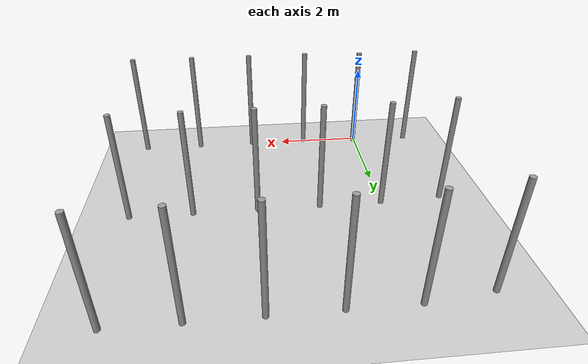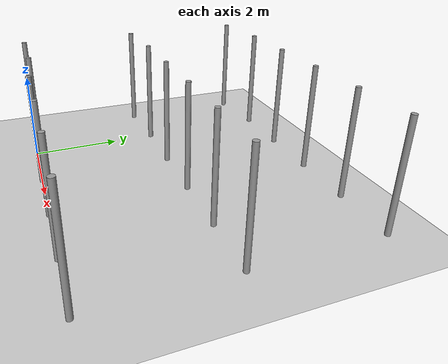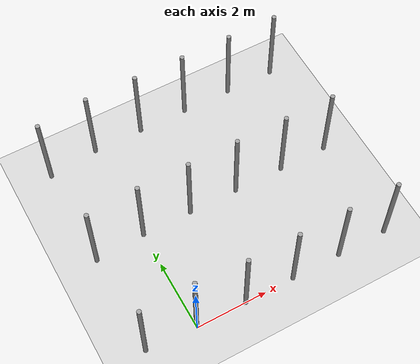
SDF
<sdf version="1.6">
 <world name="default">
  <light name="sun" type="directional">
   <pose>0 0 10 0 -0 0</pose>
   <diffuse>0.8 0.8 0.8 1</diffuse>
   <specular>0.1 0.1 0.1 1</specular>
   <attenuation>
    <range>1000</range>
    <constant>0.9</constant>
    <linear>0.01</linear>
    <quadratic>0.001</quadratic>
   </attenuation>
   <direction>-0.5 0.5 -1</direction>
  </light>
  <model name="ground_plane">
   <static>1</static>
   <link name="link">
    <collision name="collision">
     <geometry><plane><normal>0 0 1</normal><size>100 100</size></plane></geometry>
     <surface><friction><ode><mu>100</mu><mu2>50</mu2></ode></friction></surface>
    </collision>
    <visual name="visual">
     <cast_shadows>0</cast_shadows>
     <geometry><plane><normal>0 0 1</normal><size>100 100</size></plane></geometry>
     <material>
      <script><uri>file://media/materials/scripts/gazebo.material</uri><name>Gazebo/Grey</name></script>
     </material>
    </visual>
   </link>
  </model>
  <gravity>0 0 -9.8</gravity>
  <magnetic_field>6e-06 2.3e-05 -4.2e-05</magnetic_field>
  <atmosphere type="adiabatic"/>
  <physics name="default_physics" default="0" type="ode">
   <max_step_size>0.001</max_step_size>
   <real_time_factor>1</real_time_factor>
   <real_time_update_rate>1000</real_time_update_rate>
  </physics>
  <scene><ambient>0.4 0.4 0.4 1</ambient><background>0.7 0.7 0.7 1</background><shadows>1</shadows></scene>
  <spherical_coordinates>
   <surface_model>EARTH_WGS84</surface_model>
   <latitude_deg>0</latitude_deg>
   <longitude_deg>0</longitude_deg>
   <elevation>0</elevation>
   <heading_deg>0</heading_deg>
  </spherical_coordinates>
  <model name="pole_8">
   <link name="link_0">
    <inertial>
     <mass>0.0364582</mass>
     <inertia>
      <ixx>0.00312124</ixx>
      <ixy>0</ixy>
      <ixz>0</ixz>
      <iyy>0.00312124</iyy>
      <iyz>0</iyz>
      <izz>0.00016615</izz>
     </inertia>
    </inertial>
    <visual name="visual">
     <geometry><cylinder><radius>0.06</radius><length>2.5</length></cylinder></geometry>
     <material>
      <lighting>1</lighting>
      <script><uri>file://media/materials/scripts/gazebo.material</uri><name>Gazebo/Grey</name></script>
      <ambient>0.3 0.3 0.3 1</ambient>
      <diffuse>0.7 0.7 0.7 1</diffuse>
      <specular>0.01 0.01 0.01 1</specular>
      <emissive>0 0 0 1</emissive>
      <shader type="vertex"><normal_map>__default__</normal_map></shader>
     </material>
    </visual>
    <collision name="collision">
     <geometry><cylinder><radius>0.06</radius><length>2.5</length></cylinder></geometry>
     <surface>
      <friction>
       <ode><mu>1</mu><mu2>1</mu2><fdir1>0 0 0</fdir1><slip1>0</slip1><slip2>0</slip2></ode>
       <torsional>
        <coefficient>1</coefficient>
        <patch_radius>0</patch_radius>
        <surface_radius>0</surface_radius>
        <use_patch_radius>1</use_patch_radius>
        <ode><slip>0</slip></ode>
       </torsional>
      </friction>
      <bounce><restitution_coefficient>0</restitution_coefficient><threshold>1e+06</threshold></bounce>
      <contact>
       <collide_without_contact>0</collide_without_contact>
       <collide_without_contact_bitmask>1</collide_without_contact_bitmask>
       <collide_bitmask>1</collide_bitmask>
       <ode>
        <soft_cfm>0</soft_cfm>
        <soft_erp>0.2</soft_erp>
        <kp>1e+13</kp>
        <kd>1</kd>
        <max_vel>0.01</max_vel>
        <min_depth>0</min_depth>
       </ode>
       <bullet>
        <split_impulse>1</split_impulse>
        <split_impulse_penetration_threshold>-0.01</split_impulse_penetration_threshold>
        <soft_cfm>0</soft_cfm>
        <soft_erp>0.2</soft_erp>
        <kp>1e+13</kp>
        <kd>1</kd>
       </bullet>
      </contact>
     </surface>
    </collision>
   </link>
   <static>0</static>
   <pose>1.40425 0.001666 1.25 -0 1e-06 -0.020338</pose>
  </model>
  <model name="pole_9">
   <link name="link_0">
    <inertial>
     <mass>0.0364582</mass>
     <inertia>
      <ixx>0.00312124</ixx>
      <ixy>0</ixy>
      <ixz>0</ixz>
      <iyy>0.00312124</iyy>
      <iyz>0</iyz>
      <izz>0.00016615</izz>
     </inertia>
    </inertial>
    <visual name="visual">
     <geometry><cylinder><radius>0.06</radius><length>2.5</length></cylinder></geometry>
     <material>
      <lighting>1</lighting>
      <script><uri>file://media/materials/scripts/gazebo.material</uri><name>Gazebo/Grey</name></script>
      <ambient>0.3 0.3 0.3 1</ambient>
      <diffuse>0.7 0.7 0.7 1</diffuse>
      <specular>0.01 0.01 0.01 1</specular>
      <emissive>0 0 0 1</emissive>
      <shader type="vertex"><normal_map>__default__</normal_map></shader>
     </material>
    </visual>
    <collision name="collision">
     <geometry><cylinder><radius>0.06</radius><length>2.5</length></cylinder></geometry>
     <surface>
      <friction>
       <ode><mu>1</mu><mu2>1</mu2><fdir1>0 0 0</fdir1><slip1>0</slip1><slip2>0</slip2></ode>
       <torsional>
        <coefficient>1</coefficient>
        <patch_radius>0</patch_radius>
        <surface_radius>0</surface_radius>
        <use_patch_radius>1</use_patch_radius>
        <ode><slip>0</slip></ode>
       </torsional>
      </friction>
      <bounce><restitution_coefficient>0</restitution_coefficient><threshold>1e+06</threshold></bounce>
      <contact>
       <collide_without_contact>0</collide_without_contact>
       <collide_without_contact_bitmask>1</collide_without_contact_bitmask>
       <collide_bitmask>1</collide_bitmask>
       <ode>
        <soft_cfm>0</soft_cfm>
        <soft_erp>0.2</soft_erp>
        <kp>1e+13</kp>
        <kd>1</kd>
        <max_vel>0.01</max_vel>
        <min_depth>0</min_depth>
       </ode>
       <bullet>
        <split_impulse>1</split_impulse>
        <split_impulse_penetration_threshold>-0.01</split_impulse_penetration_threshold>
        <soft_cfm>0</soft_cfm>
        <soft_erp>0.2</soft_erp>
        <kp>1e+13</kp>
        <kd>1</kd>
       </bullet>
      </contact>
     </surface>
    </collision>
   </link>
   <static>0</static>
   <pose>2.80807 0.001895 1.24999 0 1e-06 -0.040139</pose>
  </model>
  <model name="pole_10">
   <link name="link_0">
    <inertial>
     <mass>0.0364582</mass>
     <inertia>
      <ixx>0.00312124</ixx>
      <ixy>0</ixy>
      <ixz>0</ixz>
      <iyy>0.00312124</iyy>
      <iyz>0</iyz>
      <izz>0.00016615</izz>
     </inertia>
    </inertial>
    <visual name="visual">
     <geometry><cylinder><radius>0.06</radius><length>2.5</length></cylinder></geometry>
     <material>
      <lighting>1</lighting>
      <script><uri>file://media/materials/scripts/gazebo.material</uri><name>Gazebo/Grey</name></script>
      <ambient>0.3 0.3 0.3 1</ambient>
      <diffuse>0.7 0.7 0.7 1</diffuse>
      <specular>0.01 0.01 0.01 1</specular>
      <emissive>0 0 0 1</emissive>
      <shader type="vertex"><normal_map>__default__</normal_map></shader>
     </material>
    </visual>
    <collision name="collision">
     <geometry><cylinder><radius>0.06</radius><length>2.5</length></cylinder></geometry>
     <surface>
      <friction>
       <ode><mu>1</mu><mu2>1</mu2><fdir1>0 0 0</fdir1><slip1>0</slip1><slip2>0</slip2></ode>
       <torsional>
        <coefficient>1</coefficient>
        <patch_radius>0</patch_radius>
        <surface_radius>0</surface_radius>
        <use_patch_radius>1</use_patch_radius>
        <ode><slip>0</slip></ode>
       </torsional>
      </friction>
      <bounce><restitution_coefficient>0</restitution_coefficient><threshold>1e+06</threshold></bounce>
      <contact>
       <collide_without_contact>0</collide_without_contact>
       <collide_without_contact_bitmask>1</collide_without_contact_bitmask>
       <collide_bitmask>1</collide_bitmask>
       <ode>
        <soft_cfm>0</soft_cfm>
        <soft_erp>0.2</soft_erp>
        <kp>1e+13</kp>
        <kd>1</kd>
        <max_vel>0.01</max_vel>
        <min_depth>0</min_depth>
       </ode>
       <bullet>
        <split_impulse>1</split_impulse>
        <split_impulse_penetration_threshold>-0.01</split_impulse_penetration_threshold>
        <soft_cfm>0</soft_cfm>
        <soft_erp>0.2</soft_erp>
        <kp>1e+13</kp>
        <kd>1</kd>
       </bullet>
      </contact>
     </surface>
    </collision>
   </link>
   <static>0</static>
   <pose>4.20397 0.001829 1.25 -1e-06 -1e-06 -0.022796</pose>
  </model>
  <model name="pole_11">
   <link name="link_0">
    <inertial>
     <mass>0.0364582</mass>
     <inertia>
      <ixx>0.00312124</ixx>
      <ixy>0</ixy>
      <ixz>0</ixz>
      <iyy>0.00312124</iyy>
      <iyz>0</iyz>
      <izz>0.00016615</izz>
     </inertia>
    </inertial>
    <visual name="visual">
     <geometry><cylinder><radius>0.06</radius><length>2.5</length></cylinder></geometry>
     <material>
      <lighting>1</lighting>
      <script><uri>file://media/materials/scripts/gazebo.material</uri><name>Gazebo/Grey</name></script>
      <ambient>0.3 0.3 0.3 1</ambient>
      <diffuse>0.7 0.7 0.7 1</diffuse>
      <specular>0.01 0.01 0.01 1</specular>
      <emissive>0 0 0 1</emissive>
      <shader type="vertex"><normal_map>__default__</normal_map></shader>
     </material>
    </visual>
    <collision name="collision">
     <geometry><cylinder><radius>0.06</radius><length>2.5</length></cylinder></geometry>
     <surface>
      <friction>
       <ode><mu>1</mu><mu2>1</mu2><fdir1>0 0 0</fdir1><slip1>0</slip1><slip2>0</slip2></ode>
       <torsional>
        <coefficient>1</coefficient>
        <patch_radius>0</patch_radius>
        <surface_radius>0</surface_radius>
        <use_patch_radius>1</use_patch_radius>
        <ode><slip>0</slip></ode>
       </torsional>
      </friction>
      <bounce><restitution_coefficient>0</restitution_coefficient><threshold>1e+06</threshold></bounce>
      <contact>
       <collide_without_contact>0</collide_without_contact>
       <collide_without_contact_bitmask>1</collide_without_contact_bitmask>
       <collide_bitmask>1</collide_bitmask>
       <ode>
        <soft_cfm>0</soft_cfm>
        <soft_erp>0.2</soft_erp>
        <kp>1e+13</kp>
        <kd>1</kd>
        <max_vel>0.01</max_vel>
        <min_depth>0</min_depth>
       </ode>
       <bullet>
        <split_impulse>1</split_impulse>
        <split_impulse_penetration_threshold>-0.01</split_impulse_penetration_threshold>
        <soft_cfm>0</soft_cfm>
        <soft_erp>0.2</soft_erp>
        <kp>1e+13</kp>
        <kd>1</kd>
       </bullet>
      </contact>
     </surface>
    </collision>
   </link>
   <static>0</static>
   <pose>5.61625 0.001647 1.24999 -1e-06 -0 -0.022703</pose>
  </model>
  <model name="pole_11_clone">
   <link name="link_0">
    <inertial>
     <mass>0.0364582</mass>
     <inertia>
      <ixx>0.00312124</ixx>
      <ixy>0</ixy>
      <ixz>0</ixz>
      <iyy>0.00312124</iyy>
      <iyz>0</iyz>
      <izz>0.00016615</izz>
     </inertia>
    </inertial>
    <visual name="visual">
     <geometry><cylinder><radius>0.06</radius><length>2.5</length></cylinder></geometry>
     <material>
      <lighting>1</lighting>
      <script><uri>file://media/materials/scripts/gazebo.material</uri><name>Gazebo/Grey</name></script>
      <ambient>0.3 0.3 0.3 1</ambient>
      <diffuse>0.7 0.7 0.7 1</diffuse>
      <specular>0.01 0.01 0.01 1</specular>
      <emissive>0 0 0 1</emissive>
      <shader type="vertex"><normal_map>__default__</normal_map></shader>
     </material>
    </visual>
    <collision name="collision">
     <geometry><cylinder><radius>0.06</radius><length>2.5</length></cylinder></geometry>
     <surface>
      <friction>
       <ode><mu>1</mu><mu2>1</mu2><fdir1>0 0 0</fdir1><slip1>0</slip1><slip2>0</slip2></ode>
       <torsional>
        <coefficient>1</coefficient>
        <patch_radius>0</patch_radius>
        <surface_radius>0</surface_radius>
        <use_patch_radius>1</use_patch_radius>
        <ode><slip>0</slip></ode>
       </torsional>
      </friction>
      <bounce><restitution_coefficient>0</restitution_coefficient><threshold>1e+06</threshold></bounce>
      <contact>
       <collide_without_contact>0</collide_without_contact>
       <collide_without_contact_bitmask>1</collide_without_contact_bitmask>
       <collide_bitmask>1</collide_bitmask>
       <ode>
        <soft_cfm>0</soft_cfm>
        <soft_erp>0.2</soft_erp>
        <kp>1e+13</kp>
        <kd>1</kd>
        <max_vel>0.01</max_vel>
        <min_depth>0</min_depth>
       </ode>
       <bullet>
        <split_impulse>1</split_impulse>
        <split_impulse_penetration_threshold>-0.01</split_impulse_penetration_threshold>
        <soft_cfm>0</soft_cfm>
        <soft_erp>0.2</soft_erp>
        <kp>1e+13</kp>
        <kd>1</kd>
       </bullet>
      </contact>
     </surface>
    </collision>
   </link>
   <static>0</static>
   <pose>0.000733 2.98388 1.24999 -1e-06 2e-06 -0.029597</pose>
  </model>
  <model name="pole">
   <link name="link_0">
    <inertial>
     <mass>0.0364582</mass>
     <inertia>
      <ixx>0.00312124</ixx>
      <ixy>0</ixy>
      <ixz>0</ixz>
      <iyy>0.00312124</iyy>
      <iyz>0</iyz>
      <izz>0.00016615</izz>
     </inertia>
    </inertial>
    <visual name="visual">
     <geometry><cylinder><radius>0.06</radius><length>2.5</length></cylinder></geometry>
     <material>
      <lighting>1</lighting>
      <script><uri>file://media/materials/scripts/gazebo.material</uri><name>Gazebo/Grey</name></script>
      <ambient>0.3 0.3 0.3 1</ambient>
      <diffuse>0.7 0.7 0.7 1</diffuse>
      <specular>0.01 0.01 0.01 1</specular>
      <emissive>0 0 0 1</emissive>
      <shader type="vertex"><normal_map>__default__</normal_map></shader>
     </material>
    </visual>
    <collision name="collision">
     <geometry><cylinder><radius>0.06</radius><length>2.5</length></cylinder></geometry>
     <surface>
      <friction>
       <ode><mu>1</mu><mu2>1</mu2><fdir1>0 0 0</fdir1><slip1>0</slip1><slip2>0</slip2></ode>
       <torsional>
        <coefficient>1</coefficient>
        <patch_radius>0</patch_radius>
        <surface_radius>0</surface_radius>
        <use_patch_radius>1</use_patch_radius>
        <ode><slip>0</slip></ode>
       </torsional>
      </friction>
      <bounce><restitution_coefficient>0</restitution_coefficient><threshold>1e+06</threshold></bounce>
      <contact>
       <collide_without_contact>0</collide_without_contact>
       <collide_without_contact_bitmask>1</collide_without_contact_bitmask>
       <collide_bitmask>1</collide_bitmask>
       <ode>
        <soft_cfm>0</soft_cfm>
        <soft_erp>0.2</soft_erp>
        <kp>1e+13</kp>
        <kd>1</kd>
        <max_vel>0.01</max_vel>
        <min_depth>0</min_depth>
       </ode>
       <bullet>
        <split_impulse>1</split_impulse>
        <split_impulse_penetration_threshold>-0.01</split_impulse_penetration_threshold>
        <soft_cfm>0</soft_cfm>
        <soft_erp>0.2</soft_erp>
        <kp>1e+13</kp>
        <kd>1</kd>
       </bullet>
      </contact>
     </surface>
    </collision>
   </link>
   <static>0</static>
   <pose>0.006715 5.9613 1.24999 0 -1e-06 -0.016992</pose>
  </model>
  <model name="pole_2">
   <link name="link_0">
    <inertial>
     <mass>0.0364582</mass>
     <inertia>
      <ixx>0.00312124</ixx>
      <ixy>0</ixy>
      <ixz>0</ixz>
      <iyy>0.00312124</iyy>
      <iyz>0</iyz>
      <izz>0.00016615</izz>
     </inertia>
    </inertial>
    <visual name="visual">
     <geometry><cylinder><radius>0.06</radius><length>2.5</length></cylinder></geometry>
     <material>
      <lighting>1</lighting>
      <script><uri>file://media/materials/scripts/gazebo.material</uri><name>Gazebo/Grey</name></script>
      <ambient>0.3 0.3 0.3 1</ambient>
      <diffuse>0.7 0.7 0.7 1</diffuse>
      <specular>0.01 0.01 0.01 1</specular>
      <emissive>0 0 0 1</emissive>
      <shader type="vertex"><normal_map>__default__</normal_map></shader>
     </material>
    </visual>
    <collision name="collision">
     <geometry><cylinder><radius>0.06</radius><length>2.5</length></cylinder></geometry>
     <surface>
      <friction>
       <ode><mu>1</mu><mu2>1</mu2><fdir1>0 0 0</fdir1><slip1>0</slip1><slip2>0</slip2></ode>
       <torsional>
        <coefficient>1</coefficient>
        <patch_radius>0</patch_radius>
        <surface_radius>0</surface_radius>
        <use_patch_radius>1</use_patch_radius>
        <ode><slip>0</slip></ode>
       </torsional>
      </friction>
      <bounce><restitution_coefficient>0</restitution_coefficient><threshold>1e+06</threshold></bounce>
      <contact>
       <collide_without_contact>0</collide_without_contact>
       <collide_without_contact_bitmask>1</collide_without_contact_bitmask>
       <collide_bitmask>1</collide_bitmask>
       <ode>
        <soft_cfm>0</soft_cfm>
        <soft_erp>0.2</soft_erp>
        <kp>1e+13</kp>
        <kd>1</kd>
        <max_vel>0.01</max_vel>
        <min_depth>0</min_depth>
       </ode>
       <bullet>
        <split_impulse>1</split_impulse>
        <split_impulse_penetration_threshold>-0.01</split_impulse_penetration_threshold>
        <soft_cfm>0</soft_cfm>
        <soft_erp>0.2</soft_erp>
        <kp>1e+13</kp>
        <kd>1</kd>
       </bullet>
      </contact>
     </surface>
    </collision>
   </link>
   <static>0</static>
   <pose>0.03423 0.094504 1.24999 -0 -1e-06 0.044543</pose>
  </model>
  <model name="pole_3">
   <link name="link_0">
    <inertial>
     <mass>0.0364582</mass>
     <inertia>
      <ixx>0.00312124</ixx>
      <ixy>0</ixy>
      <ixz>0</ixz>
      <iyy>0.00312124</iyy>
      <iyz>0</iyz>
      <izz>0.00016615</izz>
     </inertia>
    </inertial>
    <visual name="visual">
     <geometry><cylinder><radius>0.06</radius><length>2.5</length></cylinder></geometry>
     <material>
      <lighting>1</lighting>
      <script><uri>file://media/materials/scripts/gazebo.material</uri><name>Gazebo/Grey</name></script>
      <ambient>0.3 0.3 0.3 1</ambient>
      <diffuse>0.7 0.7 0.7 1</diffuse>
      <specular>0.01 0.01 0.01 1</specular>
      <emissive>0 0 0 1</emissive>
      <shader type="vertex"><normal_map>__default__</normal_map></shader>
     </material>
    </visual>
    <collision name="collision">
     <geometry><cylinder><radius>0.06</radius><length>2.5</length></cylinder></geometry>
     <surface>
      <friction>
       <ode><mu>1</mu><mu2>1</mu2><fdir1>0 0 0</fdir1><slip1>0</slip1><slip2>0</slip2></ode>
       <torsional>
        <coefficient>1</coefficient>
        <patch_radius>0</patch_radius>
        <surface_radius>0</surface_radius>
        <use_patch_radius>1</use_patch_radius>
        <ode><slip>0</slip></ode>
       </torsional>
      </friction>
      <bounce><restitution_coefficient>0</restitution_coefficient><threshold>1e+06</threshold></bounce>
      <contact>
       <collide_without_contact>0</collide_without_contact>
       <collide_without_contact_bitmask>1</collide_without_contact_bitmask>
       <collide_bitmask>1</collide_bitmask>
       <ode>
        <soft_cfm>0</soft_cfm>
        <soft_erp>0.2</soft_erp>
        <kp>1e+13</kp>
        <kd>1</kd>
        <max_vel>0.01</max_vel>
        <min_depth>0</min_depth>
       </ode>
       <bullet>
        <split_impulse>1</split_impulse>
        <split_impulse_penetration_threshold>-0.01</split_impulse_penetration_threshold>
        <soft_cfm>0</soft_cfm>
        <soft_erp>0.2</soft_erp>
        <kp>1e+13</kp>
        <kd>1</kd>
       </bullet>
      </contact>
     </surface>
    </collision>
   </link>
   <static>0</static>
   <pose>1.40476 2.98139 1.25 -1e-06 1e-06 -0.017683</pose>
  </model>
  <model name="pole_5">
   <link name="link_0">
    <inertial>
     <mass>0.0364582</mass>
     <inertia>
      <ixx>0.00312124</ixx>
      <ixy>0</ixy>
      <ixz>0</ixz>
      <iyy>0.00312124</iyy>
      <iyz>0</iyz>
      <izz>0.00016615</izz>
     </inertia>
    </inertial>
    <visual name="visual">
     <geometry><cylinder><radius>0.06</radius><length>2.5</length></cylinder></geometry>
     <material>
      <lighting>1</lighting>
      <script><uri>file://media/materials/scripts/gazebo.material</uri><name>Gazebo/Grey</name></script>
      <ambient>0.3 0.3 0.3 1</ambient>
      <diffuse>0.7 0.7 0.7 1</diffuse>
      <specular>0.01 0.01 0.01 1</specular>
      <emissive>0 0 0 1</emissive>
      <shader type="vertex"><normal_map>__default__</normal_map></shader>
     </material>
    </visual>
    <collision name="collision">
     <geometry><cylinder><radius>0.06</radius><length>2.5</length></cylinder></geometry>
     <surface>
      <friction>
       <ode><mu>1</mu><mu2>1</mu2><fdir1>0 0 0</fdir1><slip1>0</slip1><slip2>0</slip2></ode>
       <torsional>
        <coefficient>1</coefficient>
        <patch_radius>0</patch_radius>
        <surface_radius>0</surface_radius>
        <use_patch_radius>1</use_patch_radius>
        <ode><slip>0</slip></ode>
       </torsional>
      </friction>
      <bounce><restitution_coefficient>0</restitution_coefficient><threshold>1e+06</threshold></bounce>
      <contact>
       <collide_without_contact>0</collide_without_contact>
       <collide_without_contact_bitmask>1</collide_without_contact_bitmask>
       <collide_bitmask>1</collide_bitmask>
       <ode>
        <soft_cfm>0</soft_cfm>
        <soft_erp>0.2</soft_erp>
        <kp>1e+13</kp>
        <kd>1</kd>
        <max_vel>0.01</max_vel>
        <min_depth>0</min_depth>
       </ode>
       <bullet>
        <split_impulse>1</split_impulse>
        <split_impulse_penetration_threshold>-0.01</split_impulse_penetration_threshold>
        <soft_cfm>0</soft_cfm>
        <soft_erp>0.2</soft_erp>
        <kp>1e+13</kp>
        <kd>1</kd>
       </bullet>
      </contact>
     </surface>
    </collision>
   </link>
   <static>0</static>
   <pose>2.79586 2.9814 1.24999 -1e-06 -0 -0.01763</pose>
  </model>
  <model name="pole_6">
   <link name="link_0">
    <inertial>
     <mass>0.0364582</mass>
     <inertia>
      <ixx>0.00312124</ixx>
      <ixy>0</ixy>
      <ixz>0</ixz>
      <iyy>0.00312124</iyy>
      <iyz>0</iyz>
      <izz>0.00016615</izz>
     </inertia>
    </inertial>
    <visual name="visual">
     <geometry><cylinder><radius>0.06</radius><length>2.5</length></cylinder></geometry>
     <material>
      <lighting>1</lighting>
      <script><uri>file://media/materials/scripts/gazebo.material</uri><name>Gazebo/Grey</name></script>
      <ambient>0.3 0.3 0.3 1</ambient>
      <diffuse>0.7 0.7 0.7 1</diffuse>
      <specular>0.01 0.01 0.01 1</specular>
      <emissive>0 0 0 1</emissive>
      <shader type="vertex"><normal_map>__default__</normal_map></shader>
     </material>
    </visual>
    <collision name="collision">
     <geometry><cylinder><radius>0.06</radius><length>2.5</length></cylinder></geometry>
     <surface>
      <friction>
       <ode><mu>1</mu><mu2>1</mu2><fdir1>0 0 0</fdir1><slip1>0</slip1><slip2>0</slip2></ode>
       <torsional>
        <coefficient>1</coefficient>
        <patch_radius>0</patch_radius>
        <surface_radius>0</surface_radius>
        <use_patch_radius>1</use_patch_radius>
        <ode><slip>0</slip></ode>
       </torsional>
      </friction>
      <bounce><restitution_coefficient>0</restitution_coefficient><threshold>1e+06</threshold></bounce>
      <contact>
       <collide_without_contact>0</collide_without_contact>
       <collide_without_contact_bitmask>1</collide_without_contact_bitmask>
       <collide_bitmask>1</collide_bitmask>
       <ode>
        <soft_cfm>0</soft_cfm>
        <soft_erp>0.2</soft_erp>
        <kp>1e+13</kp>
        <kd>1</kd>
        <max_vel>0.01</max_vel>
        <min_depth>0</min_depth>
       </ode>
       <bullet>
        <split_impulse>1</split_impulse>
        <split_impulse_penetration_threshold>-0.01</split_impulse_penetration_threshold>
        <soft_cfm>0</soft_cfm>
        <soft_erp>0.2</soft_erp>
        <kp>1e+13</kp>
        <kd>1</kd>
       </bullet>
      </contact>
     </surface>
    </collision>
   </link>
   <static>0</static>
   <pose>4.22243 2.98125 1.24999 0 -1e-06 -0.015515</pose>
  </model>
  <model name="pole_7">
   <link name="link_0">
    <inertial>
     <mass>0.0364582</mass>
     <inertia>
      <ixx>0.00312124</ixx>
      <ixy>0</ixy>
      <ixz>0</ixz>
      <iyy>0.00312124</iyy>
      <iyz>0</iyz>
      <izz>0.00016615</izz>
     </inertia>
    </inertial>
    <visual name="visual">
     <geometry><cylinder><radius>0.06</radius><length>2.5</length></cylinder></geometry>
     <material>
      <lighting>1</lighting>
      <script><uri>file://media/materials/scripts/gazebo.material</uri><name>Gazebo/Grey</name></script>
      <ambient>0.3 0.3 0.3 1</ambient>
      <diffuse>0.7 0.7 0.7 1</diffuse>
      <specular>0.01 0.01 0.01 1</specular>
      <emissive>0 0 0 1</emissive>
      <shader type="vertex"><normal_map>__default__</normal_map></shader>
     </material>
    </visual>
    <collision name="collision">
     <geometry><cylinder><radius>0.06</radius><length>2.5</length></cylinder></geometry>
     <surface>
      <friction>
       <ode><mu>1</mu><mu2>1</mu2><fdir1>0 0 0</fdir1><slip1>0</slip1><slip2>0</slip2></ode>
       <torsional>
        <coefficient>1</coefficient>
        <patch_radius>0</patch_radius>
        <surface_radius>0</surface_radius>
        <use_patch_radius>1</use_patch_radius>
        <ode><slip>0</slip></ode>
       </torsional>
      </friction>
      <bounce><restitution_coefficient>0</restitution_coefficient><threshold>1e+06</threshold></bounce>
      <contact>
       <collide_without_contact>0</collide_without_contact>
       <collide_without_contact_bitmask>1</collide_without_contact_bitmask>
       <collide_bitmask>1</collide_bitmask>
       <ode>
        <soft_cfm>0</soft_cfm>
        <soft_erp>0.2</soft_erp>
        <kp>1e+13</kp>
        <kd>1</kd>
        <max_vel>0.01</max_vel>
        <min_depth>0</min_depth>
       </ode>
       <bullet>
        <split_impulse>1</split_impulse>
        <split_impulse_penetration_threshold>-0.01</split_impulse_penetration_threshold>
        <soft_cfm>0</soft_cfm>
        <soft_erp>0.2</soft_erp>
        <kp>1e+13</kp>
        <kd>1</kd>
       </bullet>
      </contact>
     </surface>
    </collision>
   </link>
   <static>0</static>
   <pose>5.60736 2.9814 1.25 0 3e-06 -0.015054</pose>
  </model>
  <model name="pole_12">
   <link name="link_0">
    <inertial>
     <mass>0.0364582</mass>
     <inertia>
      <ixx>0.00312124</ixx>
      <ixy>0</ixy>
      <ixz>0</ixz>
      <iyy>0.00312124</iyy>
      <iyz>0</iyz>
      <izz>0.00016615</izz>
     </inertia>
    </inertial>
    <visual name="visual">
     <geometry><cylinder><radius>0.06</radius><length>2.5</length></cylinder></geometry>
     <material>
      <lighting>1</lighting>
      <script><uri>file://media/materials/scripts/gazebo.material</uri><name>Gazebo/Grey</name></script>
      <ambient>0.3 0.3 0.3 1</ambient>
      <diffuse>0.7 0.7 0.7 1</diffuse>
      <specular>0.01 0.01 0.01 1</specular>
      <emissive>0 0 0 1</emissive>
      <shader type="vertex"><normal_map>__default__</normal_map></shader>
     </material>
    </visual>
    <collision name="collision">
     <geometry><cylinder><radius>0.06</radius><length>2.5</length></cylinder></geometry>
     <surface>
      <friction>
       <ode><mu>1</mu><mu2>1</mu2><fdir1>0 0 0</fdir1><slip1>0</slip1><slip2>0</slip2></ode>
       <torsional>
        <coefficient>1</coefficient>
        <patch_radius>0</patch_radius>
        <surface_radius>0</surface_radius>
        <use_patch_radius>1</use_patch_radius>
        <ode><slip>0</slip></ode>
       </torsional>
      </friction>
      <bounce><restitution_coefficient>0</restitution_coefficient><threshold>1e+06</threshold></bounce>
      <contact>
       <collide_without_contact>0</collide_without_contact>
       <collide_without_contact_bitmask>1</collide_without_contact_bitmask>
       <collide_bitmask>1</collide_bitmask>
       <ode>
        <soft_cfm>0</soft_cfm>
        <soft_erp>0.2</soft_erp>
        <kp>1e+13</kp>
        <kd>1</kd>
        <max_vel>0.01</max_vel>
        <min_depth>0</min_depth>
       </ode>
       <bullet>
        <split_impulse>1</split_impulse>
        <split_impulse_penetration_threshold>-0.01</split_impulse_penetration_threshold>
        <soft_cfm>0</soft_cfm>
        <soft_erp>0.2</soft_erp>
        <kp>1e+13</kp>
        <kd>1</kd>
       </bullet>
      </contact>
     </surface>
    </collision>
   </link>
   <static>0</static>
   <pose>1.41364 5.96128 1.25 -1e-06 -1e-06 -0.013858</pose>
  </model>
  <model name="pole_13">
   <link name="link_0">
    <inertial>
     <mass>0.0364582</mass>
     <inertia>
      <ixx>0.00312124</ixx>
      <ixy>0</ixy>
      <ixz>0</ixz>
      <iyy>0.00312124</iyy>
      <iyz>0</iyz>
      <izz>0.00016615</izz>
     </inertia>
    </inertial>
    <visual name="visual">
     <geometry><cylinder><radius>0.06</radius><length>2.5</length></cylinder></geometry>
     <material>
      <lighting>1</lighting>
      <script><uri>file://media/materials/scripts/gazebo.material</uri><name>Gazebo/Grey</name></script>
      <ambient>0.3 0.3 0.3 1</ambient>
      <diffuse>0.7 0.7 0.7 1</diffuse>
      <specular>0.01 0.01 0.01 1</specular>
      <emissive>0 0 0 1</emissive>
      <shader type="vertex"><normal_map>__default__</normal_map></shader>
     </material>
    </visual>
    <collision name="collision">
     <geometry><cylinder><radius>0.06</radius><length>2.5</length></cylinder></geometry>
     <surface>
      <friction>
       <ode><mu>1</mu><mu2>1</mu2><fdir1>0 0 0</fdir1><slip1>0</slip1><slip2>0</slip2></ode>
       <torsional>
        <coefficient>1</coefficient>
        <patch_radius>0</patch_radius>
        <surface_radius>0</surface_radius>
        <use_patch_radius>1</use_patch_radius>
        <ode><slip>0</slip></ode>
       </torsional>
      </friction>
      <bounce><restitution_coefficient>0</restitution_coefficient><threshold>1e+06</threshold></bounce>
      <contact>
       <collide_without_contact>0</collide_without_contact>
       <collide_without_contact_bitmask>1</collide_without_contact_bitmask>
       <collide_bitmask>1</collide_bitmask>
       <ode>
        <soft_cfm>0</soft_cfm>
        <soft_erp>0.2</soft_erp>
        <kp>1e+13</kp>
        <kd>1</kd>
        <max_vel>0.01</max_vel>
        <min_depth>0</min_depth>
       </ode>
       <bullet>
        <split_impulse>1</split_impulse>
        <split_impulse_penetration_threshold>-0.01</split_impulse_penetration_threshold>
        <soft_cfm>0</soft_cfm>
        <soft_erp>0.2</soft_erp>
        <kp>1e+13</kp>
        <kd>1</kd>
       </bullet>
      </contact>
     </surface>
    </collision>
   </link>
   <static>0</static>
   <pose>2.80805 5.96144 1.25 0 -1e-06 -0.014469</pose>
  </model>
  <model name="pole_14">
   <link name="link_0">
    <inertial>
     <mass>0.0364582</mass>
     <inertia>
      <ixx>0.00312124</ixx>
      <ixy>0</ixy>
      <ixz>0</ixz>
      <iyy>0.00312124</iyy>
      <iyz>0</iyz>
      <izz>0.00016615</izz>
     </inertia>
    </inertial>
    <visual name="visual">
     <geometry><cylinder><radius>0.06</radius><length>2.5</length></cylinder></geometry>
     <material>
      <lighting>1</lighting>
      <script><uri>file://media/materials/scripts/gazebo.material</uri><name>Gazebo/Grey</name></script>
      <ambient>0.3 0.3 0.3 1</ambient>
      <diffuse>0.7 0.7 0.7 1</diffuse>
      <specular>0.01 0.01 0.01 1</specular>
      <emissive>0 0 0 1</emissive>
      <shader type="vertex"><normal_map>__default__</normal_map></shader>
     </material>
    </visual>
    <collision name="collision">
     <geometry><cylinder><radius>0.06</radius><length>2.5</length></cylinder></geometry>
     <surface>
      <friction>
       <ode><mu>1</mu><mu2>1</mu2><fdir1>0 0 0</fdir1><slip1>0</slip1><slip2>0</slip2></ode>
       <torsional>
        <coefficient>1</coefficient>
        <patch_radius>0</patch_radius>
        <surface_radius>0</surface_radius>
        <use_patch_radius>1</use_patch_radius>
        <ode><slip>0</slip></ode>
       </torsional>
      </friction>
      <bounce><restitution_coefficient>0</restitution_coefficient><threshold>1e+06</threshold></bounce>
      <contact>
       <collide_without_contact>0</collide_without_contact>
       <collide_without_contact_bitmask>1</collide_without_contact_bitmask>
       <collide_bitmask>1</collide_bitmask>
       <ode>
        <soft_cfm>0</soft_cfm>
        <soft_erp>0.2</soft_erp>
        <kp>1e+13</kp>
        <kd>1</kd>
        <max_vel>0.01</max_vel>
        <min_depth>0</min_depth>
       </ode>
       <bullet>
        <split_impulse>1</split_impulse>
        <split_impulse_penetration_threshold>-0.01</split_impulse_penetration_threshold>
        <soft_cfm>0</soft_cfm>
        <soft_erp>0.2</soft_erp>
        <kp>1e+13</kp>
        <kd>1</kd>
       </bullet>
      </contact>
     </surface>
    </collision>
   </link>
   <static>0</static>
   <pose>4.21952 5.96113 1.25 -1e-06 1e-06 -0.012843</pose>
  </model>
  <model name="pole_15">
   <link name="link_0">
    <inertial>
     <mass>0.0364582</mass>
     <inertia>
      <ixx>0.00312124</ixx>
      <ixy>0</ixy>
      <ixz>0</ixz>
      <iyy>0.00312124</iyy>
      <iyz>0</iyz>
      <izz>0.00016615</izz>
     </inertia>
    </inertial>
    <visual name="visual">
     <geometry><cylinder><radius>0.06</radius><length>2.5</length></cylinder></geometry>
     <material>
      <lighting>1</lighting>
      <script><uri>file://media/materials/scripts/gazebo.material</uri><name>Gazebo/Grey</name></script>
      <ambient>0.3 0.3 0.3 1</ambient>
      <diffuse>0.7 0.7 0.7 1</diffuse>
      <specular>0.01 0.01 0.01 1</specular>
      <emissive>0 0 0 1</emissive>
      <shader type="vertex"><normal_map>__default__</normal_map></shader>
     </material>
    </visual>
    <collision name="collision">
     <geometry><cylinder><radius>0.06</radius><length>2.5</length></cylinder></geometry>
     <surface>
      <friction>
       <ode><mu>1</mu><mu2>1</mu2><fdir1>0 0 0</fdir1><slip1>0</slip1><slip2>0</slip2></ode>
       <torsional>
        <coefficient>1</coefficient>
        <patch_radius>0</patch_radius>
        <surface_radius>0</surface_radius>
        <use_patch_radius>1</use_patch_radius>
        <ode><slip>0</slip></ode>
       </torsional>
      </friction>
      <bounce><restitution_coefficient>0</restitution_coefficient><threshold>1e+06</threshold></bounce>
      <contact>
       <collide_without_contact>0</collide_without_contact>
       <collide_without_contact_bitmask>1</collide_without_contact_bitmask>
       <collide_bitmask>1</collide_bitmask>
       <ode>
        <soft_cfm>0</soft_cfm>
        <soft_erp>0.2</soft_erp>
        <kp>1e+13</kp>
        <kd>1</kd>
        <max_vel>0.01</max_vel>
        <min_depth>0</min_depth>
       </ode>
       <bullet>
        <split_impulse>1</split_impulse>
        <split_impulse_penetration_threshold>-0.01</split_impulse_penetration_threshold>
        <soft_cfm>0</soft_cfm>
        <soft_erp>0.2</soft_erp>
        <kp>1e+13</kp>
        <kd>1</kd>
       </bullet>
      </contact>
     </surface>
    </collision>
   </link>
   <static>0</static>
   <pose>5.62349 5.96086 1.25 -1e-06 1e-06 -0.009635</pose>
  </model>
  <model name="pole_2_clone">
   <link name="link_0">
    <inertial>
     <mass>0.0364582</mass>
     <inertia>
      <ixx>0.00312124</ixx>
      <ixy>0</ixy>
      <ixz>0</ixz>
      <iyy>0.00312124</iyy>
      <iyz>0</iyz>
      <izz>0.00016615</izz>
     </inertia>
    </inertial>
    <visual name="visual">
     <geometry><cylinder><radius>0.06</radius><length>2.5</length></cylinder></geometry>
     <material>
      <lighting>1</lighting>
      <script><uri>file://media/materials/scripts/gazebo.material</uri><name>Gazebo/Grey</name></script>
      <ambient>0.3 0.3 0.3 1</ambient>
      <diffuse>0.7 0.7 0.7 1</diffuse>
      <specular>0.01 0.01 0.01 1</specular>
      <emissive>0 0 0 1</emissive>
      <shader type="vertex"><normal_map>__default__</normal_map></shader>
     </material>
    </visual>
    <collision name="collision">
     <geometry><cylinder><radius>0.06</radius><length>2.5</length></cylinder></geometry>
     <surface>
      <friction>
       <ode><mu>1</mu><mu2>1</mu2><fdir1>0 0 0</fdir1><slip1>0</slip1><slip2>0</slip2></ode>
       <torsional>
        <coefficient>1</coefficient>
        <patch_radius>0</patch_radius>
        <surface_radius>0</surface_radius>
        <use_patch_radius>1</use_patch_radius>
        <ode><slip>0</slip></ode>
       </torsional>
      </friction>
      <bounce><restitution_coefficient>0</restitution_coefficient><threshold>1e+06</threshold></bounce>
      <contact>
       <collide_without_contact>0</collide_without_contact>
       <collide_without_contact_bitmask>1</collide_without_contact_bitmask>
       <collide_bitmask>1</collide_bitmask>
       <ode>
        <soft_cfm>0</soft_cfm>
        <soft_erp>0.2</soft_erp>
        <kp>1e+13</kp>
        <kd>1</kd>
        <max_vel>0.01</max_vel>
        <min_depth>0</min_depth>
       </ode>
       <bullet>
        <split_impulse>1</split_impulse>
        <split_impulse_penetration_threshold>-0.01</split_impulse_penetration_threshold>
        <soft_cfm>0</soft_cfm>
        <soft_erp>0.2</soft_erp>
        <kp>1e+13</kp>
        <kd>1</kd>
       </bullet>
      </contact>
     </surface>
    </collision>
   </link>
   <static>0</static>
   <pose>-1.39995 0.092148 1.25 -1e-06 -1e-06 0.044399</pose>
  </model>
  <model name="pole_2_clone_0">
   <link name="link_0">
    <inertial>
     <mass>0.0364582</mass>
     <inertia>
      <ixx>0.00312124</ixx>
      <ixy>0</ixy>
      <ixz>0</ixz>
      <iyy>0.00312124</iyy>
      <iyz>0</iyz>
      <izz>0.00016615</izz>
     </inertia>
    </inertial>
    <visual name="visual">
     <geometry><cylinder><radius>0.06</radius><length>2.5</length></cylinder></geometry>
     <material>
      <lighting>1</lighting>
      <script><uri>file://media/materials/scripts/gazebo.material</uri><name>Gazebo/Grey</name></script>
      <ambient>0.3 0.3 0.3 1</ambient>
      <diffuse>0.7 0.7 0.7 1</diffuse>
      <specular>0.01 0.01 0.01 1</specular>
      <emissive>0 0 0 1</emissive>
      <shader type="vertex"><normal_map>__default__</normal_map></shader>
     </material>
    </visual>
    <collision name="collision">
     <geometry><cylinder><radius>0.06</radius><length>2.5</length></cylinder></geometry>
     <surface>
      <friction>
       <ode><mu>1</mu><mu2>1</mu2><fdir1>0 0 0</fdir1><slip1>0</slip1><slip2>0</slip2></ode>
       <torsional>
        <coefficient>1</coefficient>
        <patch_radius>0</patch_radius>
        <surface_radius>0</surface_radius>
        <use_patch_radius>1</use_patch_radius>
        <ode><slip>0</slip></ode>
       </torsional>
      </friction>
      <bounce><restitution_coefficient>0</restitution_coefficient><threshold>1e+06</threshold></bounce>
      <contact>
       <collide_without_contact>0</collide_without_contact>
       <collide_without_contact_bitmask>1</collide_without_contact_bitmask>
       <collide_bitmask>1</collide_bitmask>
       <ode>
        <soft_cfm>0</soft_cfm>
        <soft_erp>0.2</soft_erp>
        <kp>1e+13</kp>
        <kd>1</kd>
        <max_vel>0.01</max_vel>
        <min_depth>0</min_depth>
       </ode>
       <bullet>
        <split_impulse>1</split_impulse>
        <split_impulse_penetration_threshold>-0.01</split_impulse_penetration_threshold>
        <soft_cfm>0</soft_cfm>
        <soft_erp>0.2</soft_erp>
        <kp>1e+13</kp>
        <kd>1</kd>
       </bullet>
      </contact>
     </surface>
    </collision>
   </link>
   <static>0</static>
   <pose>-1.39993 2.90041 1.24999 0 1e-06 0.042038</pose>
  </model>
  <model name="pole_2_clone_1">
   <link name="link_0">
    <inertial>
     <mass>0.0364582</mass>
     <inertia>
      <ixx>0.00312124</ixx>
      <ixy>0</ixy>
      <ixz>0</ixz>
      <iyy>0.00312124</iyy>
      <iyz>0</iyz>
      <izz>0.00016615</izz>
     </inertia>
    </inertial>
    <visual name="visual">
     <geometry><cylinder><radius>0.06</radius><length>2.5</length></cylinder></geometry>
     <material>
      <lighting>1</lighting>
      <script><uri>file://media/materials/scripts/gazebo.material</uri><name>Gazebo/Grey</name></script>
      <ambient>0.3 0.3 0.3 1</ambient>
      <diffuse>0.7 0.7 0.7 1</diffuse>
      <specular>0.01 0.01 0.01 1</specular>
      <emissive>0 0 0 1</emissive>
      <shader type="vertex"><normal_map>__default__</normal_map></shader>
     </material>
    </visual>
    <collision name="collision">
     <geometry><cylinder><radius>0.06</radius><length>2.5</length></cylinder></geometry>
     <surface>
      <friction>
       <ode><mu>1</mu><mu2>1</mu2><fdir1>0 0 0</fdir1><slip1>0</slip1><slip2>0</slip2></ode>
       <torsional>
        <coefficient>1</coefficient>
        <patch_radius>0</patch_radius>
        <surface_radius>0</surface_radius>
        <use_patch_radius>1</use_patch_radius>
        <ode><slip>0</slip></ode>
       </torsional>
      </friction>
      <bounce><restitution_coefficient>0</restitution_coefficient><threshold>1e+06</threshold></bounce>
      <contact>
       <collide_without_contact>0</collide_without_contact>
       <collide_without_contact_bitmask>1</collide_without_contact_bitmask>
       <collide_bitmask>1</collide_bitmask>
       <ode>
        <soft_cfm>0</soft_cfm>
        <soft_erp>0.2</soft_erp>
        <kp>1e+13</kp>
        <kd>1</kd>
        <max_vel>0.01</max_vel>
        <min_depth>0</min_depth>
       </ode>
       <bullet>
        <split_impulse>1</split_impulse>
        <split_impulse_penetration_threshold>-0.01</split_impulse_penetration_threshold>
        <soft_cfm>0</soft_cfm>
        <soft_erp>0.2</soft_erp>
        <kp>1e+13</kp>
        <kd>1</kd>
       </bullet>
      </contact>
     </surface>
    </collision>
   </link>
   <static>0</static>
   <pose>-1.39998 5.80017 1.24999 -1e-06 -1e-06 0.044483</pose>
  </model>
 </world>
</sdf>
